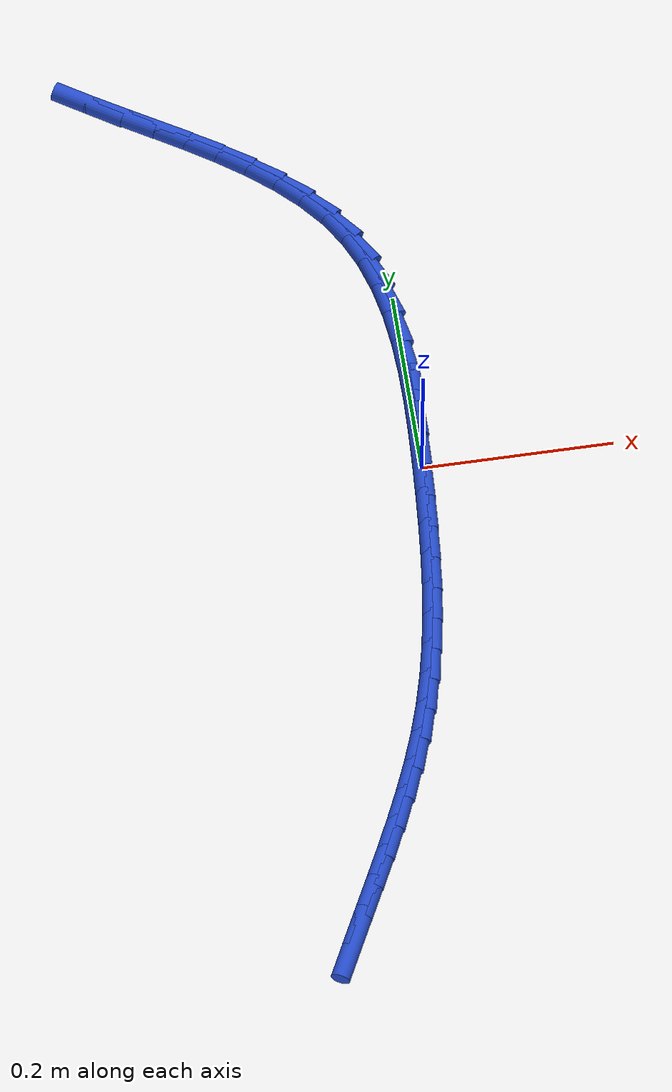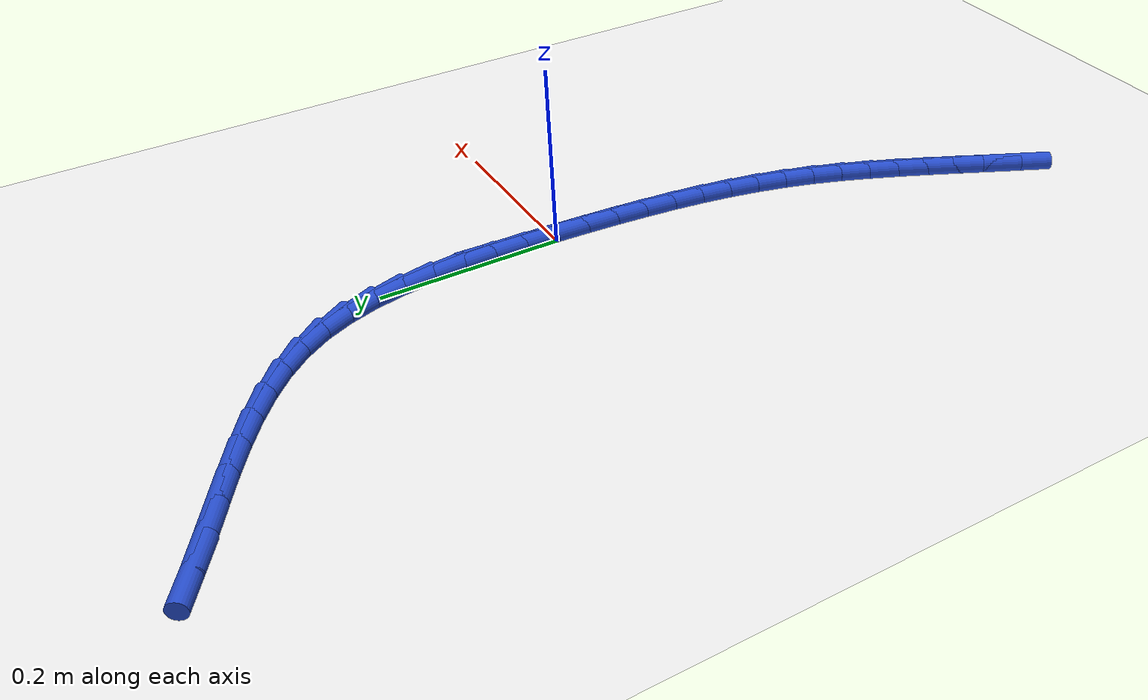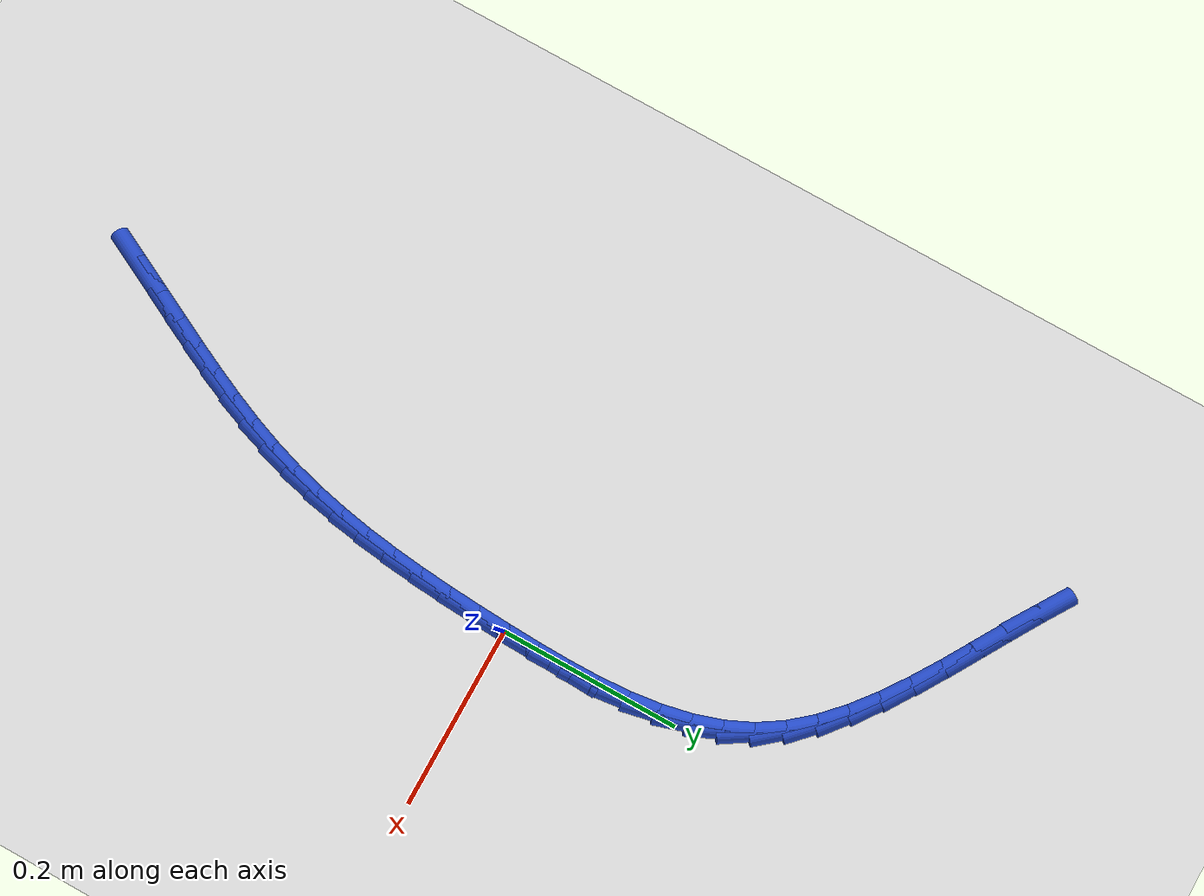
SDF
<sdf version="1.6">
 <world name="default">
  <model name="ground_plane">
   <static>1</static>
   <link name="link">
    <collision name="collision">
     <geometry><plane><normal>0 0 1</normal><size>100 100</size></plane></geometry>
     <surface><friction><ode><mu>100</mu><mu2>50</mu2></ode></friction></surface>
    </collision>
    <visual name="visual">
     <cast_shadows>0</cast_shadows>
     <geometry><plane><normal>0 0 1</normal><size>100 100</size></plane></geometry>
     <material>
      <script><uri>file://media/materials/scripts/gazebo.material</uri><name>Gazebo/WhiteGlow</name></script>
     </material>
    </visual>
   </link>
  </model>
  <model name="line">
   <link name="link_0">
    <pose>1.3010426069826053e-18 5.551115123125783e-17 0.01 0 1.57 1.5289990871327732</pose>
    <collision name="collision">
     <geometry><cylinder><radius>0.01</radius><length>0.08</length></cylinder></geometry>
    </collision>
    <visual name="visual">
     <material>
      <script><name>Gazebo/Blue</name><uri>file://media/materials/scripts/gazebo.material</uri></script>
     </material>
     <geometry><cylinder><radius>0.01</radius><length>0.08</length></cylinder></geometry>
    </visual>
   </link>
   <link name="link_1">
    <pose>0.0015093742879487997 0.03609078575869073 0.01 0 1.57 1.5499851378943492</pose>
    <collision name="collision">
     <geometry><cylinder><radius>0.01</radius><length>0.08</length></cylinder></geometry>
    </collision>
    <visual name="visual">
     <material>
      <script><name>Gazebo/Blue</name><uri>file://media/materials/scripts/gazebo.material</uri></script>
     </material>
     <geometry><cylinder><radius>0.01</radius><length>0.08</length></cylinder></geometry>
    </visual>
   </link>
   <link name="link_2">
    <pose>0.002263017666952617 0.07229893211102216 0.01 0 1.57 -1.5576826322389652</pose>
    <collision name="collision">
     <geometry><cylinder><radius>0.01</radius><length>0.08</length></cylinder></geometry>
    </collision>
    <visual name="visual">
     <material>
      <script><name>Gazebo/Blue</name><uri>file://media/materials/scripts/gazebo.material</uri></script>
     </material>
     <geometry><cylinder><radius>0.01</radius><length>0.08</length></cylinder></geometry>
    </visual>
   </link>
   <link name="link_3">
    <pose>0.0017911209381083473 0.1082819021266612 0.01 0 1.57 -1.5096772794663655</pose>
    <collision name="collision">
     <geometry><cylinder><radius>0.01</radius><length>0.08</length></cylinder></geometry>
    </collision>
    <visual name="visual">
     <material>
      <script><name>Gazebo/Blue</name><uri>file://media/materials/scripts/gazebo.material</uri></script>
     </material>
     <geometry><cylinder><radius>0.01</radius><length>0.08</length></cylinder></geometry>
    </visual>
   </link>
   <link name="link_4">
    <pose>-0.00037612509748710665 0.14369715887527493 0.01 0 1.57 -1.4458912433953883</pose>
    <collision name="collision">
     <geometry><cylinder><radius>0.01</radius><length>0.08</length></cylinder></geometry>
    </collision>
    <visual name="visual">
     <material>
      <script><name>Gazebo/Blue</name><uri>file://media/materials/scripts/gazebo.material</uri></script>
     </material>
     <geometry><cylinder><radius>0.01</radius><length>0.08</length></cylinder></geometry>
    </visual>
   </link>
   <link name="link_5">
    <pose>-0.004708529638736855 0.17820216542653022 0.01 0 1.57 -1.3642533236156058</pose>
    <collision name="collision">
     <geometry><cylinder><radius>0.01</radius><length>0.08</length></cylinder></geometry>
    </collision>
    <visual name="visual">
     <material>
      <script><name>Gazebo/Blue</name><uri>file://media/materials/scripts/gazebo.material</uri></script>
     </material>
     <geometry><cylinder><radius>0.01</radius><length>0.08</length></cylinder></geometry>
    </visual>
   </link>
   <link name="link_6">
    <pose>-0.011675901884543982 0.21145438485009402 0.01 0 1.57 -1.2627578702750764</pose>
    <collision name="collision">
     <geometry><cylinder><radius>0.01</radius><length>0.08</length></cylinder></geometry>
    </collision>
    <visual name="visual">
     <material>
      <script><name>Gazebo/Blue</name><uri>file://media/materials/scripts/gazebo.material</uri></script>
     </material>
     <geometry><cylinder><radius>0.01</radius><length>0.08</length></cylinder></geometry>
    </visual>
   </link>
   <link name="link_7">
    <pose>-0.02174805103381161 0.24311128021563327 0.01 0 1.57 -1.1403248880793007</pose>
    <collision name="collision">
     <geometry><cylinder><radius>0.01</radius><length>0.08</length></cylinder></geometry>
    </collision>
    <visual name="visual">
     <material>
      <script><name>Gazebo/Blue</name><uri>file://media/materials/scripts/gazebo.material</uri></script>
     </material>
     <geometry><cylinder><radius>0.01</radius><length>0.08</length></cylinder></geometry>
    </visual>
   </link>
   <link name="link_8">
    <pose>-0.03539478628544284 0.2728303145928151 0.01 0 1.57 -1.0001608680937926</pose>
    <collision name="collision">
     <geometry><cylinder><radius>0.01</radius><length>0.08</length></cylinder></geometry>
    </collision>
    <visual name="visual">
     <material>
      <script><name>Gazebo/Blue</name><uri>file://media/materials/scripts/gazebo.material</uri></script>
     </material>
     <geometry><cylinder><radius>0.01</radius><length>0.08</length></cylinder></geometry>
    </visual>
   </link>
   <link name="link_9">
    <pose>-0.053029752607261706 0.30030486766787123 0.01 0 1.57 -0.8684000259979132</pose>
    <collision name="collision">
     <geometry><cylinder><radius>0.01</radius><length>0.08</length></cylinder></geometry>
    </collision>
    <visual name="visual">
     <material>
      <script><name>Gazebo/Blue</name><uri>file://media/materials/scripts/gazebo.material</uri></script>
     </material>
     <geometry><cylinder><radius>0.01</radius><length>0.08</length></cylinder></geometry>
    </visual>
   </link>
   <link name="link_10">
    <pose>-0.07445553293797326 0.32561908884248497 0.01 0 1.57 -0.7611738528342561</pose>
    <collision name="collision">
     <geometry><cylinder><radius>0.01</radius><length>0.08</length></cylinder></geometry>
    </collision>
    <visual name="visual">
     <material>
      <script><name>Gazebo/Blue</name><uri>file://media/materials/scripts/gazebo.material</uri></script>
     </material>
     <geometry><cylinder><radius>0.01</radius><length>0.08</length></cylinder></geometry>
    </visual>
   </link>
   <link name="link_11">
    <pose>-0.09909947850621165 0.3490970854630085 0.01 0 1.57 -0.6779099228716905</pose>
    <collision name="collision">
     <geometry><cylinder><radius>0.01</radius><length>0.08</length></cylinder></geometry>
    </collision>
    <visual name="visual">
     <material>
      <script><name>Gazebo/Blue</name><uri>file://media/materials/scripts/gazebo.material</uri></script>
     </material>
     <geometry><cylinder><radius>0.01</radius><length>0.08</length></cylinder></geometry>
    </visual>
   </link>
   <link name="link_12">
    <pose>-0.12638348751876943 0.37106645204353145 0.01 0 1.57 -0.6163332840438137</pose>
    <collision name="collision">
     <geometry><cylinder><radius>0.01</radius><length>0.08</length></cylinder></geometry>
    </collision>
    <visual name="visual">
     <material>
      <script><name>Gazebo/Blue</name><uri>file://media/materials/scripts/gazebo.material</uri></script>
     </material>
     <geometry><cylinder><radius>0.01</radius><length>0.08</length></cylinder></geometry>
    </visual>
   </link>
   <link name="link_13">
    <pose>-0.15572945818243913 0.3918547830981433 0.01 0 1.57 -0.5739887044337283</pose>
    <collision name="collision">
     <geometry><cylinder><radius>0.01</radius><length>0.08</length></cylinder></geometry>
    </collision>
    <visual name="visual">
     <material>
      <script><name>Gazebo/Blue</name><uri>file://media/materials/scripts/gazebo.material</uri></script>
     </material>
     <geometry><cylinder><radius>0.01</radius><length>0.08</length></cylinder></geometry>
    </visual>
   </link>
   <link name="link_14">
    <pose>-0.18655928870401312 0.4117896731409338 0.01 0 1.57 -0.5488951339359027</pose>
    <collision name="collision">
     <geometry><cylinder><radius>0.01</radius><length>0.08</length></cylinder></geometry>
    </collision>
    <visual name="visual">
     <material>
      <script><name>Gazebo/Blue</name><uri>file://media/materials/scripts/gazebo.material</uri></script>
     </material>
     <geometry><cylinder><radius>0.01</radius><length>0.08</length></cylinder></geometry>
    </visual>
   </link>
   <link name="link_15">
    <pose>-0.21829487729028416 0.43119871668599224 0.01 0 1.57 -0.5397965242602958</pose>
    <collision name="collision">
     <geometry><cylinder><radius>0.01</radius><length>0.08</length></cylinder></geometry>
    </collision>
    <visual name="visual">
     <material>
      <script><name>Gazebo/Blue</name><uri>file://media/materials/scripts/gazebo.material</uri></script>
     </material>
     <geometry><cylinder><radius>0.01</radius><length>0.08</length></cylinder></geometry>
    </visual>
   </link>
   <link name="link_16">
    <pose>-0.2503581221480445 0.4504095082474082 0.01 0 1.57 -0.5462340969510177</pose>
    <collision name="collision">
     <geometry><cylinder><radius>0.01</radius><length>0.08</length></cylinder></geometry>
    </collision>
    <visual name="visual">
     <material>
      <script><name>Gazebo/Blue</name><uri>file://media/materials/scripts/gazebo.material</uri></script>
     </material>
     <geometry><cylinder><radius>0.01</radius><length>0.08</length></cylinder></geometry>
    </visual>
   </link>
   <link name="link_17">
    <pose>-0.2821709214840868 0.4697496423392714 0.01 0 1.57 -0.5685606857905623</pose>
    <collision name="collision">
     <geometry><cylinder><radius>0.01</radius><length>0.08</length></cylinder></geometry>
    </collision>
    <visual name="visual">
     <material>
      <script><name>Gazebo/Blue</name><uri>file://media/materials/scripts/gazebo.material</uri></script>
     </material>
     <geometry><cylinder><radius>0.01</radius><length>0.08</length></cylinder></geometry>
    </visual>
   </link>
   <link name="link_204">
    <pose>-0.14881516830115782 -0.5204612127301 0.01 0 1.57 1.104900477736249</pose>
    <collision name="collision">
     <geometry><cylinder><radius>0.01</radius><length>0.08</length></cylinder></geometry>
    </collision>
    <visual name="visual">
     <material>
      <script><name>Gazebo/Blue</name><uri>file://media/materials/scripts/gazebo.material</uri></script>
     </material>
     <geometry><cylinder><radius>0.01</radius><length>0.08</length></cylinder></geometry>
    </visual>
   </link>
   <link name="link_205">
    <pose>-0.13293441494997987 -0.48887742594227984 0.01 0 1.57 1.1012577244786275</pose>
    <collision name="collision">
     <geometry><cylinder><radius>0.01</radius><length>0.08</length></cylinder></geometry>
    </collision>
    <visual name="visual">
     <material>
      <script><name>Gazebo/Blue</name><uri>file://media/materials/scripts/gazebo.material</uri></script>
     </material>
     <geometry><cylinder><radius>0.01</radius><length>0.08</length></cylinder></geometry>
    </visual>
   </link>
   <link name="link_206">
    <pose>-0.11712955432223918 -0.4577278205717451 0.01 0 1.57 1.105708612367407</pose>
    <collision name="collision">
     <geometry><cylinder><radius>0.01</radius><length>0.08</length></cylinder></geometry>
    </collision>
    <visual name="visual">
     <material>
      <script><name>Gazebo/Blue</name><uri>file://media/materials/scripts/gazebo.material</uri></script>
     </material>
     <geometry><cylinder><radius>0.01</radius><length>0.08</length></cylinder></geometry>
    </visual>
   </link>
   <link name="link_207">
    <pose>-0.10164273548261621 -0.426865375969126 0.01 0 1.57 1.118527491238553</pose>
    <collision name="collision">
     <geometry><cylinder><radius>0.01</radius><length>0.08</length></cylinder></geometry>
    </collision>
    <visual name="visual">
     <material>
      <script><name>Gazebo/Blue</name><uri>file://media/materials/scripts/gazebo.material</uri></script>
     </material>
     <geometry><cylinder><radius>0.01</radius><length>0.08</length></cylinder></geometry>
    </visual>
   </link>
   <link name="link_208">
    <pose>-0.0867161074957926 -0.3961430714850556 0.01 0 1.57 1.1399567568227027</pose>
    <collision name="collision">
     <geometry><cylinder><radius>0.01</radius><length>0.08</length></cylinder></geometry>
    </collision>
    <visual name="visual">
     <material>
      <script><name>Gazebo/Blue</name><uri>file://media/materials/scripts/gazebo.material</uri></script>
     </material>
     <geometry><cylinder><radius>0.01</radius><length>0.08</length></cylinder></geometry>
    </visual>
   </link>
   <link name="link_209">
    <pose>-0.07259181942644882 -0.3654138864701641 0.01 0 1.57 1.1701745822976253</pose>
    <collision name="collision">
     <geometry><cylinder><radius>0.01</radius><length>0.08</length></cylinder></geometry>
    </collision>
    <visual name="visual">
     <material>
      <script><name>Gazebo/Blue</name><uri>file://media/materials/scripts/gazebo.material</uri></script>
     </material>
     <geometry><cylinder><radius>0.01</radius><length>0.08</length></cylinder></geometry>
    </visual>
   </link>
   <link name="link_210">
    <pose>-0.059512020339265705 -0.33453080027508275 0.01 0 1.57 1.2092408298115238</pose>
    <collision name="collision">
     <geometry><cylinder><radius>0.01</radius><length>0.08</length></cylinder></geometry>
    </collision>
    <visual name="visual">
     <material>
      <script><name>Gazebo/Blue</name><uri>file://media/materials/scripts/gazebo.material</uri></script>
     </material>
     <geometry><cylinder><radius>0.01</radius><length>0.08</length></cylinder></geometry>
    </visual>
   </link>
   <link name="link_211">
    <pose>-0.0477188592989241 -0.3033467922504425 0.01 0 1.57 1.2569534023299838</pose>
    <collision name="collision">
     <geometry><cylinder><radius>0.01</radius><length>0.08</length></cylinder></geometry>
    </collision>
    <visual name="visual">
     <material>
      <script><name>Gazebo/Blue</name><uri>file://media/materials/scripts/gazebo.material</uri></script>
     </material>
     <geometry><cylinder><radius>0.01</radius><length>0.08</length></cylinder></geometry>
    </visual>
   </link>
   <link name="link_212">
    <pose>-0.03745234364974943 -0.27171566235465927 0.01 0 1.57 1.3081892578201444</pose>
    <collision name="collision">
     <geometry><cylinder><radius>0.01</radius><length>0.08</length></cylinder></geometry>
    </collision>
    <visual name="visual">
     <material>
      <script><name>Gazebo/Blue</name><uri>file://media/materials/scripts/gazebo.material</uri></script>
     </material>
     <geometry><cylinder><radius>0.01</radius><length>0.08</length></cylinder></geometry>
    </visual>
   </link>
   <link name="link_213">
    <pose>-0.028805105314747576 -0.23954767796393578 0.01 0 1.57 1.3548074485216544</pose>
    <collision name="collision">
     <geometry><cylinder><radius>0.01</radius><length>0.08</length></cylinder></geometry>
    </collision>
    <visual name="visual">
     <material>
      <script><name>Gazebo/Blue</name><uri>file://media/materials/scripts/gazebo.material</uri></script>
     </material>
     <geometry><cylinder><radius>0.01</radius><length>0.08</length></cylinder></geometry>
    </visual>
   </link>
   <link name="link_214">
    <pose>-0.021629776447242254 -0.2068450632213584 0.01 0 1.57 1.3958517038119065</pose>
    <collision name="collision">
     <geometry><cylinder><radius>0.01</radius><length>0.08</length></cylinder></geometry>
    </collision>
    <visual name="visual">
     <material>
      <script><name>Gazebo/Blue</name><uri>file://media/materials/scripts/gazebo.material</uri></script>
     </material>
     <geometry><cylinder><radius>0.01</radius><length>0.08</length></cylinder></geometry>
    </visual>
   </link>
   <link name="link_215">
    <pose>-0.015756930224739923 -0.17361849424519563 0.01 0 1.57 1.4312291587008439</pose>
    <collision name="collision">
     <geometry><cylinder><radius>0.01</radius><length>0.08</length></cylinder></geometry>
    </collision>
    <visual name="visual">
     <material>
      <script><name>Gazebo/Blue</name><uri>file://media/materials/scripts/gazebo.material</uri></script>
     </material>
     <geometry><cylinder><radius>0.01</radius><length>0.08</length></cylinder></geometry>
    </visual>
   </link>
   <link name="link_216">
    <pose>-0.011017139824746969 -0.13987864715371517 0.01 0 1.57 1.460962922491221</pose>
    <collision name="collision">
     <geometry><cylinder><radius>0.01</radius><length>0.08</length></cylinder></geometry>
    </collision>
    <visual name="visual">
     <material>
      <script><name>Gazebo/Blue</name><uri>file://media/materials/scripts/gazebo.material</uri></script>
     </material>
     <geometry><cylinder><radius>0.01</radius><length>0.08</length></cylinder></geometry>
    </visual>
   </link>
   <link name="link_217">
    <pose>-0.007240978424770105 -0.10563619806518743 0.01 0 1.57 1.485155934910781</pose>
    <collision name="collision">
     <geometry><cylinder><radius>0.01</radius><length>0.08</length></cylinder></geometry>
    </collision>
    <visual name="visual">
     <material>
      <script><name>Gazebo/Blue</name><uri>file://media/materials/scripts/gazebo.material</uri></script>
     </material>
     <geometry><cylinder><radius>0.01</radius><length>0.08</length></cylinder></geometry>
    </visual>
   </link>
   <link name="link_218">
    <pose>-0.004259019202315671 -0.07090182309788004 0.01 0 1.57 1.5039602860073058</pose>
    <collision name="collision">
     <geometry><cylinder><radius>0.01</radius><length>0.08</length></cylinder></geometry>
    </collision>
    <visual name="visual">
     <material>
      <script><name>Gazebo/Blue</name><uri>file://media/materials/scripts/gazebo.material</uri></script>
     </material>
     <geometry><cylinder><radius>0.01</radius><length>0.08</length></cylinder></geometry>
    </visual>
   </link>
   <link name="link_219">
    <pose>-0.0019018353348901618 -0.03568619837006169 0.01 0 1.57 1.5175533934470413</pose>
    <collision name="collision">
     <geometry><cylinder><radius>0.01</radius><length>0.08</length></cylinder></geometry>
    </collision>
    <visual name="visual">
     <material>
      <script><name>Gazebo/Blue</name><uri>file://media/materials/scripts/gazebo.material</uri></script>
     </material>
     <geometry><cylinder><radius>0.01</radius><length>0.08</length></cylinder></geometry>
    </visual>
   </link>
   <link name="link_220">
    <pose>-7.589415207398531e-18 -7.632783294297951e-17 0.01 0 1.57 1.5261210061836166</pose>
    <collision name="collision">
     <geometry><cylinder><radius>0.01</radius><length>0.08</length></cylinder></geometry>
    </collision>
    <visual name="visual">
     <material>
      <script><name>Gazebo/Blue</name><uri>file://media/materials/scripts/gazebo.material</uri></script>
     </material>
     <geometry><cylinder><radius>0.01</radius><length>0.08</length></cylinder></geometry>
    </visual>
   </link>
   <link name="link_221">
    <pose>0.0016159136248481822 0.03614609589403357 0.01 0 1.57 1.5298462647301443</pose>
    <collision name="collision">
     <geometry><cylinder><radius>0.01</radius><length>0.08</length></cylinder></geometry>
    </collision>
    <visual name="visual">
     <material>
      <script><name>Gazebo/Blue</name><uri>file://media/materials/scripts/gazebo.material</uri></script>
     </material>
     <geometry><cylinder><radius>0.01</radius><length>0.08</length></cylinder></geometry>
    </visual>
   </link>
   <link name="link_222">
    <pose>0.0031153323621480903 0.07274141319377418 0.01 0 1.57 1.5279949896922047</pose>
    <collision name="collision">
     <geometry><cylinder><radius>0.01</radius><length>0.08</length></cylinder></geometry>
    </collision>
    <visual name="visual">
     <material>
      <script><name>Gazebo/Blue</name><uri>file://media/materials/scripts/gazebo.material</uri></script>
     </material>
     <geometry><cylinder><radius>0.01</radius><length>0.08</length></cylinder></geometry>
    </visual>
   </link>
  </model>
 </world>
</sdf>
